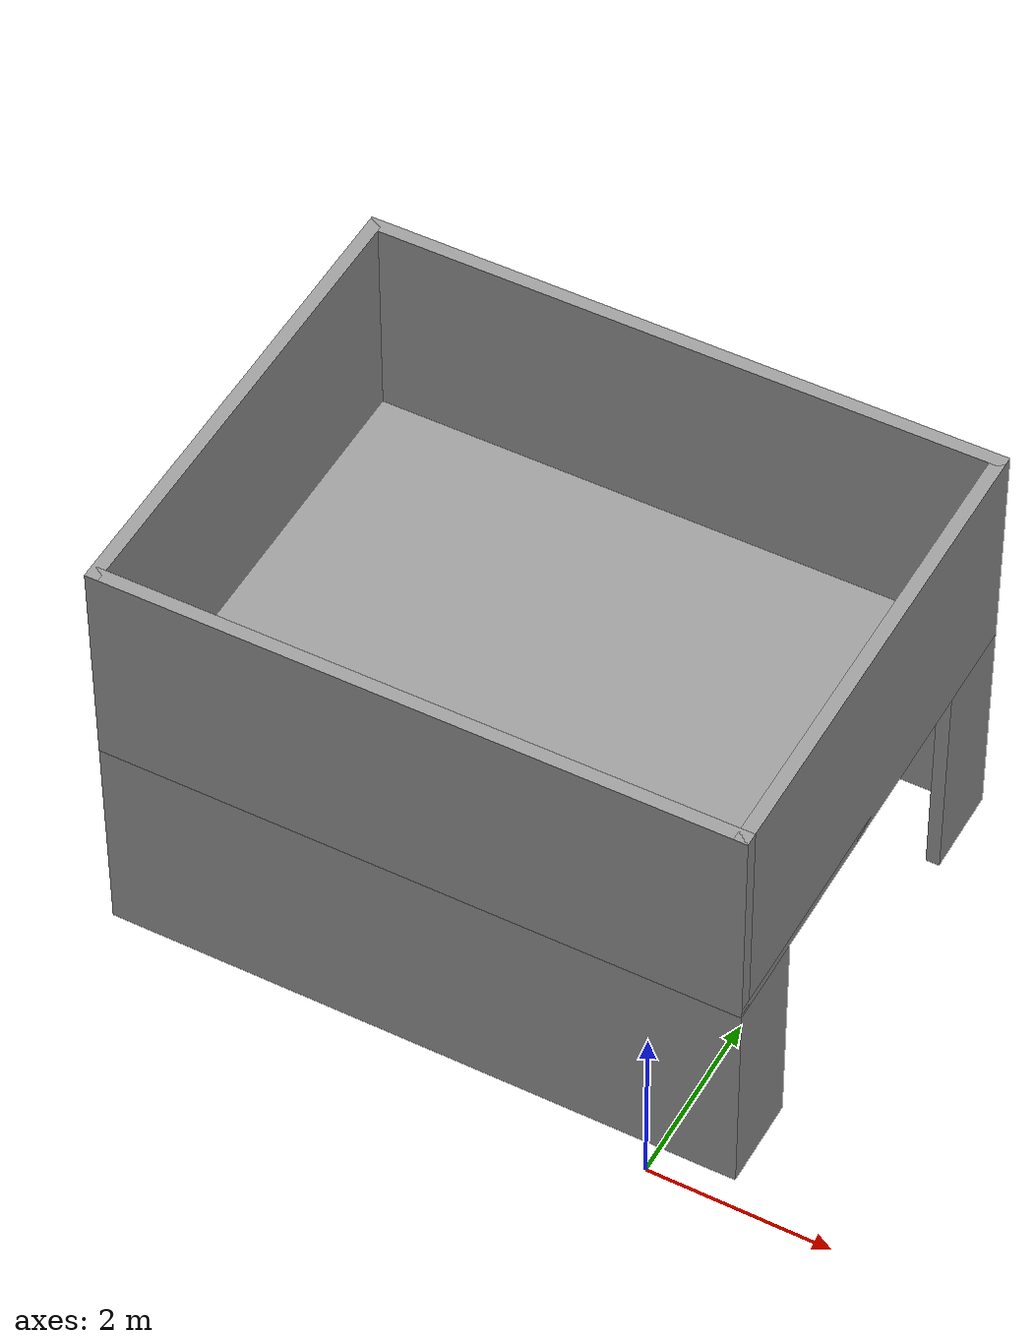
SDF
<?xml version='1.0'?>
<sdf version='1.7'>
  <model name='Entrance'>
    <pose>-2.68318 2.90137 0 0 -0 0</pose>
    <link name='Floor_7'>
      <collision name='Floor_7_Collision'>
        <geometry>
          <box>
            <size>7 5.5 0.1</size>
          </box>
        </geometry>
        <pose>0 0 0.05 0 -0 0</pose>
      </collision>
      <visual name='Floor_7_Visual'>
        <pose>0 0 0.05 0 -0 0</pose>
        <geometry>
          <box>
            <size>7 5.5 0.1</size>
          </box>
        </geometry>
        <material>
          <script>
            <uri>file://media/materials/scripts/gazebo.material</uri>
            <name>Gazebo/Grey</name>
          </script>
          <ambient>1 1 1 1</ambient>
        </material>
        <meta>
          <layer>1</layer>
        </meta>
      </visual>
      <pose>0 0.151365 2.5 0 -0 0</pose>
    </link>
    <link name='Wall_18'>
      <collision name='Wall_18_Collision'>
        <geometry>
          <box>
            <size>7 0.15 2.5</size>
          </box>
        </geometry>
        <pose>0 0 1.25 0 -0 0</pose>
      </collision>
      <visual name='Wall_18_Visual'>
        <pose>0 0 1.25 0 -0 0</pose>
        <geometry>
          <box>
            <size>7 0.15 2.5</size>
          </box>
        </geometry>
        <material>
          <script>
            <uri>file://media/materials/scripts/gazebo.material</uri>
            <name>Gazebo/Grey</name>
          </script>
          <ambient>1 1 1 1</ambient>
        </material>
        <meta>
          <layer>0</layer>
        </meta>
      </visual>
      <pose>0 -2.52364 0 0 -0 3.14159</pose>
    </link>
    <link name='Wall_20'>
      <collision name='Wall_20_Collision'>
        <geometry>
          <box>
            <size>1 0.15 2.5</size>
          </box>
        </geometry>
        <pose>0 0 1.25 0 -0 0</pose>
      </collision>
      <visual name='Wall_20_Visual'>
        <pose>0 0 1.25 0 -0 0</pose>
        <geometry>
          <box>
            <size>1 0.15 2.5</size>
          </box>
        </geometry>
        <material>
          <script>
            <uri>file://media/materials/scripts/gazebo.material</uri>
            <name>Gazebo/Grey</name>
          </script>
          <ambient>1 1 1 1</ambient>
        </material>
        <meta>
          <layer>0</layer>
        </meta>
      </visual>
      <pose>3.425 2.40137 0 0 -0 -1.5708</pose>
    </link>
    <link name='Wall_22'>
      <collision name='Wall_22_Collision'>
        <geometry>
          <box>
            <size>1 0.15 2.5</size>
          </box>
        </geometry>
        <pose>0 0 1.25 0 -0 0</pose>
      </collision>
      <visual name='Wall_22_Visual'>
        <pose>0 0 1.25 0 -0 0</pose>
        <geometry>
          <box>
            <size>1 0.15 2.5</size>
          </box>
        </geometry>
        <material>
          <script>
            <uri>file://media/materials/scripts/gazebo.material</uri>
            <name>Gazebo/Grey</name>
          </script>
          <ambient>1 1 1 1</ambient>
        </material>
        <meta>
          <layer>0</layer>
        </meta>
      </visual>
      <pose>3.425 -2.09863 0 0 -0 1.5708</pose>
    </link>
    <link name='Wall_49'>
      <collision name='Wall_49_Collision'>
        <geometry>
          <box>
            <size>7 0.15 2.5</size>
          </box>
        </geometry>
        <pose>0 0 1.25 0 -0 0</pose>
      </collision>
      <visual name='Wall_49_Visual'>
        <pose>0 0 1.25 0 -0 0</pose>
        <geometry>
          <box>
            <size>7 0.15 2.5</size>
          </box>
        </geometry>
        <material>
          <script>
            <uri>file://media/materials/scripts/gazebo.material</uri>
            <name>Gazebo/Grey</name>
          </script>
          <ambient>1 1 1 1</ambient>
        </material>
        <meta>
          <layer>1</layer>
        </meta>
      </visual>
      <pose>0 2.82637 2.5 0 -0 3.14159</pose>
    </link>
    <link name='Wall_50'>
      <collision name='Wall_50_Collision'>
        <geometry>
          <box>
            <size>5.5 0.15 2.5</size>
          </box>
        </geometry>
        <pose>0 0 1.25 0 -0 0</pose>
      </collision>
      <visual name='Wall_50_Visual'>
        <pose>0 0 1.25 0 -0 0</pose>
        <geometry>
          <box>
            <size>5.5 0.15 2.5</size>
          </box>
        </geometry>
        <material>
          <script>
            <uri>file://media/materials/scripts/gazebo.material</uri>
            <name>Gazebo/Grey</name>
          </script>
          <ambient>1 1 1 1</ambient>
        </material>
        <meta>
          <layer>1</layer>
        </meta>
      </visual>
      <pose>-3.425 0.151365 2.5 0 -0 -1.5708</pose>
    </link>
    <link name='Wall_51'>
      <collision name='Wall_51_Collision'>
        <geometry>
          <box>
            <size>7 0.15 2.5</size>
          </box>
        </geometry>
        <pose>0 0 1.25 0 -0 0</pose>
      </collision>
      <visual name='Wall_51_Visual'>
        <pose>0 0 1.25 0 -0 0</pose>
        <geometry>
          <box>
            <size>7 0.15 2.5</size>
          </box>
        </geometry>
        <material>
          <script>
            <uri>file://media/materials/scripts/gazebo.material</uri>
            <name>Gazebo/Grey</name>
          </script>
          <ambient>1 1 1 1</ambient>
        </material>
        <meta>
          <layer>1</layer>
        </meta>
      </visual>
      <pose>0 -2.52364 2.5 0 -0 0</pose>
    </link>
    <link name='Wall_53'>
      <collision name='Wall_53_Collision'>
        <geometry>
          <box>
            <size>5.5 0.15 2.5</size>
          </box>
        </geometry>
        <pose>0 0 1.25 0 -0 0</pose>
      </collision>
      <visual name='Wall_53_Visual'>
        <pose>0 0 1.25 0 -0 0</pose>
        <geometry>
          <box>
            <size>5.5 0.15 2.5</size>
          </box>
        </geometry>
        <material>
          <script>
            <uri>file://media/materials/scripts/gazebo.material</uri>
            <name>Gazebo/Grey</name>
          </script>
          <ambient>1 1 1 1</ambient>
        </material>
        <meta>
          <layer>1</layer>
        </meta>
      </visual>
      <pose>3.425 0.151365 2.5 0 -0 -1.5708</pose>
    </link>
    <link name='Wall_8'>
      <collision name='Wall_8_Collision'>
        <geometry>
          <box>
            <size>7 0.15 2.5</size>
          </box>
        </geometry>
        <pose>0 0 1.25 0 -0 0</pose>
      </collision>
      <visual name='Wall_8_Visual'>
        <pose>0 0 1.25 0 -0 0</pose>
        <geometry>
          <box>
            <size>7 0.15 2.5</size>
          </box>
        </geometry>
        <material>
          <script>
            <uri>file://media/materials/scripts/gazebo.material</uri>
            <name>Gazebo/Grey</name>
          </script>
          <ambient>1 1 1 1</ambient>
        </material>
        <meta>
          <layer>0</layer>
        </meta>
      </visual>
      <pose>0 2.82637 0 0 -0 0</pose>
    </link>
    <static>1</static>
  </model>
</sdf>
